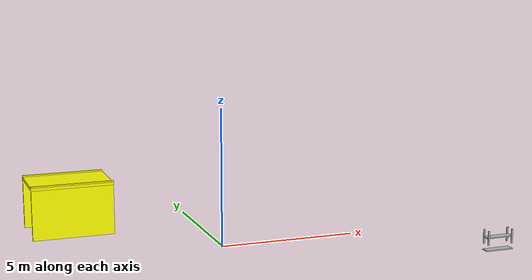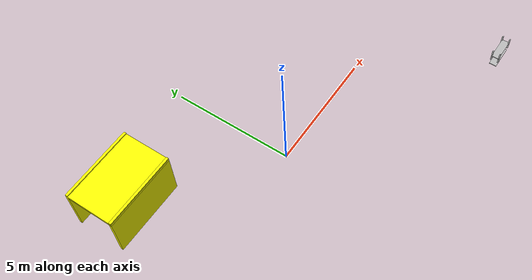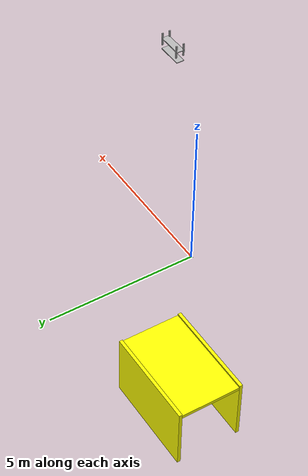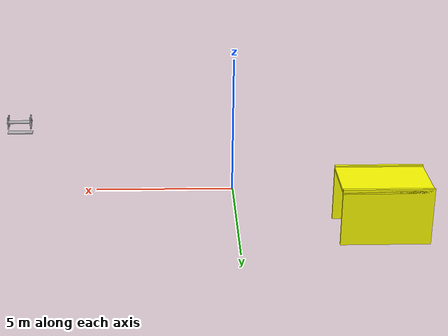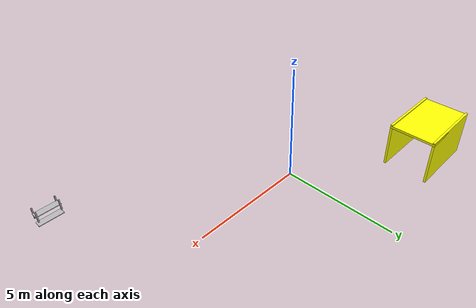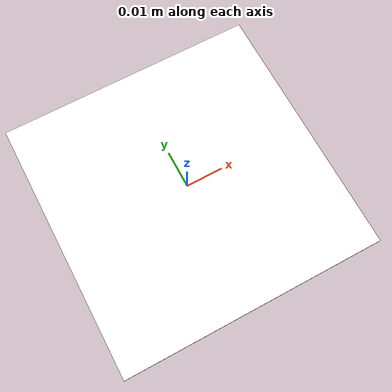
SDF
<sdf version="1.5">
 <world name="leonardo_race_field">
  <physics name="default_physics" default="0" type="ode">
   <gravity>0 0 -9.8066</gravity>
   <ode>
    <solver>
     <type>quick</type>
     <iters>10</iters>
     <sor>1.3</sor>
     <use_dynamic_moi_rescaling>0</use_dynamic_moi_rescaling>
     <precon_iterations>0</precon_iterations>
    </solver>
    <constraints>
     <cfm>0</cfm>
     <erp>0.2</erp>
     <contact_max_correcting_vel>100</contact_max_correcting_vel>
     <contact_surface_layer>0.001</contact_surface_layer>
     <max_contacts>5</max_contacts>
    </constraints>
   </ode>
   <max_step_size>0.025</max_step_size>
   <real_time_factor>1</real_time_factor>
   <real_time_update_rate>40</real_time_update_rate>
  </physics>
  <light type="directional" name="sun">
   <cast_shadows>false</cast_shadows>
   <pose>0 0 10 0 0 0</pose>
   <diffuse>0.6 0.4 0.2 1</diffuse>
   <specular>0.2 0.2 0.2 1</specular>
   <attenuation>
    <range>1000</range>
    <constant>0.9</constant>
    <linear>0.01</linear>
    <quadratic>0.001</quadratic>
   </attenuation>
   <direction>-0.5 0.1 -0.9</direction>
  </light>
  <include>
   <name>rect_tunnel</name>
   <pose>-4.8 3.6 0.1 0 0 0</pose>
   <uri>model://rect_tunnel</uri>
   <static>true</static>
  </include>
  <include>
   <name>shelf</name>
   <pose>8.40 -4.70 0.1 0 0 0</pose>
   <uri>model://shelf</uri>
   <static>true</static>
  </include>
  <plugin filename="gz-sim-physics-system" name="gz::sim::systems::Physics"/>
  <plugin filename="gz-sim-user-commands-system" name="gz::sim::systems::UserCommands"/>
  <plugin filename="gz-sim-scene-broadcaster-system" name="gz::sim::systems::SceneBroadcaster"/>
  <include><uri>model://aruco0</uri><name>arucotag0</name></include>
  <include><uri>model://aruco999</uri><name>arucotag999</name></include>
 </world>
</sdf>

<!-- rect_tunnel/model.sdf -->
<sdf version="1.5">
  <model name="rect_tunnel">
    <static>true</static>

    <link name="tunnel_link">

      <collision name="roof_collision">
        <pose>0 0 1.9 0 0 0</pose>
        <geometry>
          <box>
            <size>3.0 2.0 0.1</size>
          </box>
        </geometry>
      </collision>

      <collision name="left_wall_collision">
        <pose>0 0.95 1.0 0 0 0</pose>
        <geometry>
          <box>
            <!-- lunghezza 4 m, spessore 0.1, altezza 2 m -->
            <size>4.0 0.1 2.0</size>
          </box>
        </geometry>
      </collision>

      <collision name="right_wall_collision">
        <pose>0 -0.95 1.0 0 0 0</pose>
        <geometry>
          <box>
            <size>3.0 0.1 2.0</size>
          </box>
        </geometry>
      </collision>

      <visual name="roof_visual">
        <pose>0 0 1.9 0 0 0</pose>
        <geometry>
          <box>
            <size>3.0 2.0 0.1</size>
          </box>
        </geometry>
        <material>
          <ambient>1 1 0 1</ambient>
          <diffuse>1 1 0 1</diffuse>
        </material>
      </visual>

      <visual name="left_wall_visual">
        <pose>0 0.95 1.0 0 0 0</pose>
        <geometry>
          <box>
            <size>3.0 0.1 2.0</size>
          </box>
        </geometry>
        <material>
          <ambient>1 1 0 1</ambient>
          <diffuse>1 1 0 1</diffuse>
        </material>
      </visual>

      <visual name="right_wall_visual">
        <pose>0 -0.95 1.0 0 0 0</pose>
        <geometry>
          <box>
            <size>3.0 0.1 2.0</size>
          </box>
        </geometry>
        <material>
          <ambient>1 1 0 1</ambient>
          <diffuse>1 1 0 1</diffuse>
        </material>
      </visual>

    </link>
  </model>
</sdf>

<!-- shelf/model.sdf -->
<sdf version="1.5">
  <model name="shelf">
    <static>true</static>
    <pose>0 0 1 0 0 0</pose>
    <link name="shelf_link">

      <!-- Montanti -->
      <visual name="leg_fl">
        <pose>-0.45 -0.15 0.75 0 0 0</pose>
        <geometry><box><size>0.05 0.05 0.5</size></box></geometry>
      </visual>
      <visual name="leg_fr">
        <pose>0.45 -0.15 0.75 0 0 0</pose>
        <geometry><box><size>0.05 0.05 0.5</size></box></geometry>
      </visual>
      <visual name="leg_bl">
        <pose>-0.45 0.15 0.75 0 0 0</pose>
        <geometry><box><size>0.05 0.05 0.5</size></box></geometry>
      </visual>
      <visual name="leg_br">
        <pose>0.45 0.15 0.75 0 0 0</pose>
        <geometry><box><size>0.05 0.05 0.5</size></box></geometry>
      </visual>

      <!-- Ripiani -->
      <visual name="shelf_1">
        <pose>0 0 0.3 0 0 0</pose>
        <geometry><box><size>1.0 0.3 0.03</size></box></geometry>
      </visual>
      <visual name="shelf_2">
        <pose>0 0 0.75 0 0 0</pose>
        <geometry><box><size>1.0 0.3 0.03</size></box></geometry>
      </visual>

      <!-- Collisione semplificata -->
      <collision name="collision">
        <geometry><box><size>1.0 0.3 0.5</size></box></geometry>
      </collision>

    </link>
  </model>
</sdf>

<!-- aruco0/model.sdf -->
<sdf version="1.6">
  <model name="aruco0">
    <static>true</static>
    <link name="aruco_link">

      <inertial>
        <mass>0.001</mass> <inertia>
          <ixx>0.00000012</ixx>
          <ixy>0</ixy>
          <ixz>0</ixz>
          <iyy>0.00000012</iyy>
          <iyz>0</iyz>
          <izz>0.000000000001</izz>
        </inertia>
      </inertial>

      <visual name="aruco_visual">
        <pose>0 0 0 0 0 0</pose>
        <geometry>
          <box>
            <size>0.07 0.07 0.001</size>
          </box>
        </geometry>
        <material>
          <diffuse>1 1 1 1</diffuse>
          <specular>0.4 0.4 0.4 1</specular>
          <pbr>
            <metal>
              <albedo_map>model://aruco0/materials/textures/aruco-0.png</albedo_map>
            </metal>
          </pbr>
        </material>
      </visual>

      <collision name="aruco_collision">
        <geometry>
          <box>
            <size>0.07 0.07 0.001</size>
          </box>
        </geometry>
      </collision>
    </link>
  </model>
</sdf>

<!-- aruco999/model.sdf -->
<sdf version="1.6">
  <model name="aruco999">
    <static>true</static>
    <link name="aruco_link">

      <inertial>
        <mass>0.001</mass> <inertia>
          <ixx>0.00000012</ixx>
          <ixy>0</ixy>
          <ixz>0</ixz>
          <iyy>0.00000012</iyy>
          <iyz>0</iyz>
          <izz>0.000000000001</izz>
        </inertia>
      </inertial>

      <visual name="aruco_visual">
        <pose>0 0 0 0 0 0</pose>
        <geometry>
          <box>
            <size>0.07 0.07 0.001</size>
          </box>
        </geometry>
        <material>
          <diffuse>1 1 1 1</diffuse>
          <specular>0.4 0.4 0.4 1</specular>
          <pbr>
            <metal>
              <albedo_map>model://aruco999/materials/textures/aruco-999.png</albedo_map>
            </metal>
          </pbr>
        </material>
      </visual>

      <collision name="aruco_collision">
        <geometry>
          <box>
            <size>0.1 0.1 0.001</size>
          </box>
        </geometry>
      </collision>
    </link>
  </model>
</sdf>
